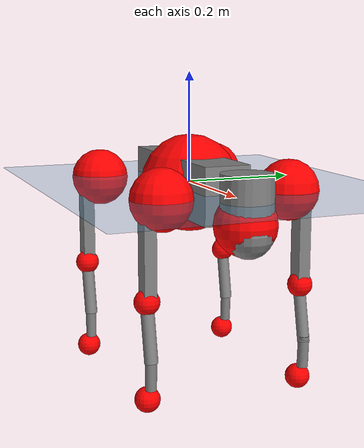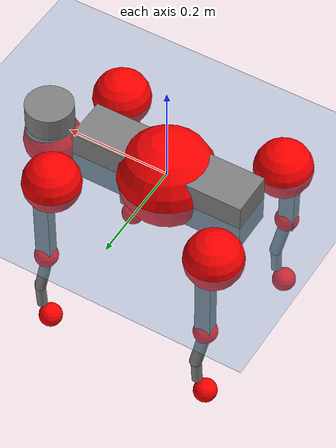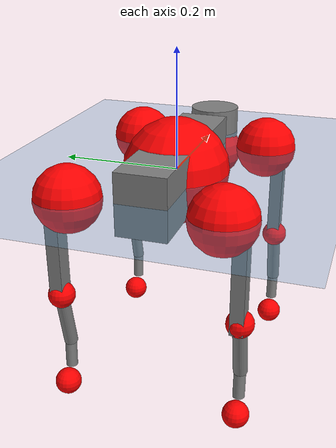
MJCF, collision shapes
<mujoco model="go2">
  <compiler angle="radian" assetdir="assets" balanceinertia="true" inertiafromgeom="false"/>

  <option timestep="0.005" density="1.2" viscosity="2e-05"/>

  <size nkey="1"/>

  <visual>
    <quality shadowsize="8192"/>
    <map shadowclip="0.5"/>
  </visual>

  <default>
    <default class="/">
      <geom contype="0" conaffinity="0" group="1" solref="-1000 -80"/>
      <site size="0.01 0.005 0.005" group="5"/>
      <general forcelimited="true" biastype="affine" gainprm="20" biasprm="0 -20 -0.5"/>
      <default class="go2">
        <joint armature="0.01" damping="0.01" frictionloss="0.2"/>
        <geom condim="1" margin="0.001"/>
        <default class="visual">
          <geom type="mesh" group="2"/>
        </default>
        <default class="collision">
          <geom group="3"/>
          <default class="foot">
            <geom size="0.022 0 0" condim="6" priority="1" friction="0.8 0.02 0.01" solimp="0.015 1 0.022"/>
          </default>
        </default>
        <default class="reward_collision_sphere">
          <geom group="5" rgba="1 0 0 1"/>
        </default>
      </default>
    </default>
  </default>

  <asset>
    <texture type="skybox" colorspace="auto" name="//unnamed_texture_0" builtin="gradient" rgb1="0.95 0.95 0.95" rgb2="0.95 0.95 0.95" width="100" height="600"/>
    <texture type="2d" colorspace="auto" name="texplane" builtin="checker" rgb1="0.345 0.575 0.748" rgb2="0.345 0.575 0.748" markrgb="1 1 1" width="512" height="512"/>
    <material name="MatPlane" class="/" texture="texplane" texuniform="true" texrepeat="2 2" specular="0.9"/>
    <material name="metal" class="/" rgba="0.9 0.95 0.95 1"/>
    <material name="black" class="/" rgba="0 0 0 1"/>
    <material name="white" class="/"/>
    <material name="gray" class="/" rgba="0.671705 0.692426 0.77427 1"/>
    <mesh name="base_0" class="/" file="base_0.obj"/>
    <mesh name="base_1" class="/" file="base_1.obj"/>
    <mesh name="base_2" class="/" file="base_2.obj"/>
    <mesh name="base_3" class="/" file="base_3.obj"/>
    <mesh name="base_4" class="/" file="base_4.obj"/>
    <mesh name="hip_0" class="/" file="hip_0.obj"/>
    <mesh name="hip_1" class="/" file="hip_1.obj"/>
    <mesh name="thigh_0" class="/" file="thigh_0.obj"/>
    <mesh name="thigh_1" class="/" file="thigh_1.obj"/>
    <mesh name="thigh_mirror_0" class="/" file="thigh_mirror_0.obj"/>
    <mesh name="thigh_mirror_1" class="/" file="thigh_mirror_1.obj"/>
    <mesh name="calf_0" class="/" file="calf_0.obj"/>
    <mesh name="calf_1" class="/" file="calf_1.obj"/>
    <mesh name="calf_mirror_0" class="/" file="calf_mirror_0.obj"/>
    <mesh name="calf_mirror_1" class="/" file="calf_mirror_1.obj"/>
    <mesh name="foot" class="/" file="foot.obj"/>
  </asset>

  <worldbody>
    <geom name="floor" class="/" size="100 100 0.125" type="plane" group="0" material="MatPlane"/>
    <light name="toplight_shadow" class="/" pos="0 0 5" dir="0.0990148 0.0990148 -0.990148" type="directional" ambient="0.04 0.04 0.04" diffuse="0.55 0.55 0.55" specular="0.12 0.12 0.12"/>
    <light name="toplight_fill" class="/" pos="0 0 5" dir="0.0990148 0.0990148 -0.990148" type="directional" castshadow="false" ambient="0.04 0.04 0.04" diffuse="0.3 0.3 0.3" specular="0.08 0.08 0.08"/>
    <body name="trunk" childclass="go2" pos="-0.00115904 0.000673482 -0.00277885" quat="1 -2.7421e-05 -7.40505e-06 3.10601e-05">
      <inertial pos="0.0185029 0.00296484 -0.00472427" quat="0.00051944 0.710885 0.00278769 0.703302" mass="5.29538" diaginertia="0.0499056 0.120604 0.00900263"/>
      <joint name="//unnamed_joint_0" type="free" armature="0" damping="0" frictionloss="0"/>
      <geom name="//unnamed_geom_1" class="visual" material="black" mesh="base_0"/>
      <geom name="//unnamed_geom_2" class="visual" material="black" mesh="base_1"/>
      <geom name="//unnamed_geom_3" class="visual" material="black" mesh="base_2"/>
      <geom name="//unnamed_geom_4" class="visual" material="white" mesh="base_3"/>
      <geom name="//unnamed_geom_5" class="visual" material="gray" mesh="base_4"/>
      <geom name="trunk_1" class="collision" size="0.169019 0.0420075 0.0512177" type="box"/>
      <geom name="trunk_2" class="collision" size="0.0449278 0.0404351" pos="0.243135 0 0.00808071" type="cylinder"/>
      <geom name="trunk_3" class="collision" size="0.0422322" pos="0.24996 0 -0.0484842"/>
      <geom name="//unnamed_geom_9" class="reward_collision_sphere" size="0.0898557"/>
      <geom name="//unnamed_geom_10" class="reward_collision_sphere" size="0.0539134" pos="0.238869 0 -0.0363632"/>
      <site name="imu" pos="-0.019382 0.0131866 0.0353278" size="0.00898557"/>
      <camera name="track" pos="0 -2.06899 0" quat="0.707107 0.707107 0 0" mode="trackcom"/>
      <camera name="ego_camera" pos="0.266169 0 0.0363632" quat="-0.5 -0.5 0.5 0.5"/>
      <body name="FL_hip" pos="0.162127 0.0465726 0.00300396" quat="0.999999 0.000147226 -0.00128497 -0.00038108">
        <inertial pos="-0.00254408 0.0003884 -0.000948607" quat="0.497293 0.49956 0.505681 0.49742" mass="0.484603" diaginertia="0.000401422 0.000745102 0.000165777"/>
        <joint name="FL_hip_joint" pos="0 0 0" axis="0.999975 0.0016866 0.00689119" range="-1.06461 1.0493" armature="0.00897136" damping="0.0230162" frictionloss="0.18427"/>
        <geom name="//unnamed_geom_11" class="visual" material="metal" mesh="hip_0"/>
        <geom name="//unnamed_geom_12" class="visual" material="gray" mesh="hip_1"/>
        <geom name="//unnamed_geom_13" class="collision" size="0.0413336 0.0179711" pos="0 0.0827596 0" quat="0.707107 0.707107 0 0" type="cylinder"/>
        <geom name="//unnamed_geom_14" class="reward_collision_sphere" size="0.0539134" pos="0 0.0724147 0"/>
        <body name="FL_thigh" pos="0.00187561 0.0983134 0.00247265" quat="1 -0.000232264 -0.000316339 -2.21171e-05">
          <inertial pos="-0.00159358 -0.02523 -0.0264886" quat="0.829723 0.0845792 -0.0193399 0.551391" mass="0.82551" diaginertia="0.00271931 0.00671459 0.000290567"/>
          <joint name="FL_thigh_joint" pos="0 0 0" axis="-0.00887286 0.999958 0.00214517" stiffness="0.0107288" range="-1.51272 3.49583" armature="0.00776936" damping="0.00681036" frictionloss="0.155811"/>
          <geom name="//unnamed_geom_15" class="visual" material="metal" mesh="thigh_0"/>
          <geom name="//unnamed_geom_16" class="visual" material="gray" mesh="thigh_1"/>
          <geom name="//unnamed_geom_17" class="collision" size="0.0956963 0.0110073 0.0152755" pos="0 0 -0.0860595" quat="0.707107 0 0.707107 0" type="box"/>
          <body name="FL_calf" pos="0.000114959 -0.000151042 -0.174413" quat="0.999999 3.84067e-05 -7.97118e-05 0.00119723">
            <inertial pos="0.00428128 -0.000622912 -0.111794" quat="0.712207 -0.00720396 -0.0148474 0.701775" mass="0.174666" diaginertia="0.000640675 0.00175133 1.85169e-05"/>
            <joint name="FL_calf_joint" pos="0 0 0" axis="0.000112569 0.999721 -0.0236179" stiffness="0.0107115" range="-2.72301 -0.848243" armature="0.0100823" damping="0.00259293" frictionloss="0.204024"/>
            <geom name="//unnamed_geom_18" class="visual" material="gray" mesh="calf_0"/>
            <geom name="//unnamed_geom_19" class="visual" material="black" mesh="calf_1"/>
            <geom name="FL_calf0" class="collision" size="0.0107827 0.0539134" pos="0.00682483 0 -0.0484842" quat="0.994493 0 -0.104807 0" type="cylinder"/>
            <geom name="//unnamed_geom_21" class="collision" size="0.00988412 0.0292031" pos="0.0170621 0 -0.119594" quat="0.999688 0 0.0249974 0" type="cylinder"/>
            <geom name="//unnamed_geom_22" class="visual" pos="0 0 -0.172119" quat="1 0 0 0" material="black" mesh="foot"/>
            <geom name="FL_foot" class="foot" size="0.0160366" pos="-0.00170621 0 -0.172119"/>
            <geom name="//unnamed_geom_24" class="reward_collision_sphere" size="0.0224639"/>
            <geom name="//unnamed_geom_25" class="reward_collision_sphere" size="0.0224639" pos="-0.00170621 0 -0.172119"/>
            <site name="FL_foot" class="foot" pos="-0.00170621 0 -0.172119" size="0.00898557"/>
          </body>
        </body>
      </body>
      <body name="FR_hip" pos="0.16644 -0.0460959 0.000882242" quat="1 8.88476e-05 0.000544879 0.000221091">
        <inertial pos="-0.00176761 -0.00248177 -0.000432372" quat="0.497439 0.50239 0.502968 0.497174" mass="0.492619" diaginertia="0.000378634 0.000684059 0.000155523"/>
        <joint name="FR_hip_joint" pos="0 0 0" axis="0.999901 0.0139567 -0.00191002" range="-0.998383 1.05155" armature="0.00993742" damping="0.00940299" frictionloss="0.172142"/>
        <geom name="//unnamed_geom_26" class="visual" pos="0 1.97252e-09 8.46054e-08" quat="4.63268e-05 1 0 0" material="metal" mesh="hip_0"/>
        <geom name="//unnamed_geom_27" class="visual" pos="0 3.19769e-09 -2.09261e-07" quat="4.63268e-05 1 0 0" material="gray" mesh="hip_1"/>
        <geom name="//unnamed_geom_28" class="collision" size="0.0413336 0.0179711" pos="0 -0.0827596 0" quat="0.707107 0.707107 0 0" type="cylinder"/>
        <geom name="//unnamed_geom_29" class="reward_collision_sphere" size="0.0539134" pos="0 -0.0724147 0"/>
        <body name="FR_thigh" pos="0.000715085 -0.0977491 0.00368184" quat="1 0.000156072 -0.000470141 0.000105452">
          <inertial pos="-0.000390537 0.0215862 -0.0260097" quat="0.55446 -0.0212679 0.0949965 0.826497" mass="0.830719" diaginertia="0.00260695 0.00647107 0.000295966"/>
          <joint name="FR_thigh_joint" pos="0 0 0" axis="-0.00736592 -0.999972 0.0014897" range="-3.50009 1.59347" armature="0.00892255" damping="0.00176851" frictionloss="0.205074"/>
          <geom name="//unnamed_geom_30" class="visual" material="metal" mesh="thigh_mirror_0"/>
          <geom name="//unnamed_geom_31" class="visual" material="gray" mesh="thigh_mirror_1"/>
          <geom name="//unnamed_geom_32" class="collision" size="0.0956963 0.0110073 0.0152755" pos="0 0 -0.0860595" quat="0.707107 0 0.707107 0" type="box"/>
          <body name="FR_calf" pos="-0.0011182 -0.00139205 -0.174514" quat="1 2.02013e-06 -2.39131e-05 -2.48754e-05">
            <inertial pos="0.00517847 9.58032e-05 -0.115152" quat="0.703168 -0.00430526 0.00323538 0.711003" mass="0.176641" diaginertia="0.000669533 0.00172973 1.78353e-05"/>
            <joint name="FR_calf_joint" pos="0 0 0" axis="0.000244446 -1 -0.000273964" stiffness="0.00260861" range="0.82294 2.75895" armature="0.00783729" damping="0.015906" frictionloss="0.154833"/>
            <geom name="//unnamed_geom_33" class="visual" material="gray" mesh="calf_mirror_0"/>
            <geom name="//unnamed_geom_34" class="visual" material="black" mesh="calf_mirror_1"/>
            <geom name="FR_calf0" class="collision" size="0.0116812 0.0539134" pos="0.00853104 0 -0.0484842" quat="0.995004 0 -0.0998334 0" type="cylinder"/>
            <geom name="//unnamed_geom_36" class="collision" size="0.00988412 0.0292031" pos="0.0170621 0 -0.119594" quat="0.999688 0 0.0249974 0" type="cylinder"/>
            <geom name="//unnamed_geom_37" class="visual" pos="0 0 -0.172119" quat="1 0 0 0" material="black" mesh="foot"/>
            <geom name="FR_foot" class="foot" size="0.0195937" pos="-0.00170621 0 -0.172119"/>
            <geom name="//unnamed_geom_39" class="reward_collision_sphere" size="0.0224639"/>
            <geom name="//unnamed_geom_40" class="reward_collision_sphere" size="0.0224639" pos="-0.00170621 0 -0.172119"/>
            <site name="FR_foot" class="foot" pos="-0.00170621 0 -0.172119" size="0.00898557"/>
          </body>
        </body>
      </body>
      <body name="RL_hip" pos="-0.16349 0.0467649 -0.00165502" quat="1 -9.43644e-05 0.000581451 -2.21789e-05">
        <inertial pos="0.00708153 0.00166189 -0.0016976" quat="0.50403 0.504387 0.49523 0.496281" mass="0.499812" diaginertia="0.000405372 0.000728527 0.000168941"/>
        <joint name="RL_hip_joint" pos="0 0 0" axis="-0.999787 0.019436 0.00687817" stiffness="0.0083582" range="-1.05393 0.995711" armature="0.00854837" damping="0" frictionloss="0.183215"/>
        <geom name="//unnamed_geom_41" class="visual" pos="-3.92315e-10 0 -7.69028e-08" quat="4.63268e-05 0 1 0" material="metal" mesh="hip_0"/>
        <geom name="//unnamed_geom_42" class="visual" pos="-6.3599e-10 0 -6.82018e-08" quat="4.63268e-05 0 1 0" material="gray" mesh="hip_1"/>
        <geom name="//unnamed_geom_43" class="collision" size="0.0413336 0.0179711" pos="0 0.0827596 0" quat="0.707107 0.707107 0 0" type="cylinder"/>
        <geom name="//unnamed_geom_44" class="reward_collision_sphere" size="0.0539134" pos="0 0.0724147 0"/>
        <body name="RL_thigh" pos="3.73449e-05 0.0979838 -1.51092e-05" quat="1 -2.75169e-05 0.000140264 1.68352e-05">
          <inertial pos="-0.00352913 -0.023423 -0.0252962" quat="0.832768 0.0734278 -0.0147816 0.548532" mass="0.852952" diaginertia="0.00272817 0.00719252 0.000319579"/>
          <joint name="RL_thigh_joint" pos="0 0 0" axis="0.0100655 0.999931 -0.00601259" stiffness="0.00485867" range="-0.537153 4.52832" armature="0.00964321" damping="0" frictionloss="0.177357"/>
          <geom name="//unnamed_geom_45" class="visual" material="metal" mesh="thigh_0"/>
          <geom name="//unnamed_geom_46" class="visual" material="gray" mesh="thigh_1"/>
          <geom name="//unnamed_geom_47" class="collision" size="0.0956963 0.0110073 0.0152755" pos="0 0 -0.0860595" quat="0.707107 0 0.707107 0" type="box"/>
          <body name="RL_calf" pos="8.82982e-05 -0.00194128 -0.171889" quat="1 -0.000383704 0.000412638 0.000710846">
            <inertial pos="0.00266854 -0.00139954 -0.115056" quat="0.713008 0.0127461 -0.0110251 0.700954" mass="0.180477" diaginertia="0.000672061 0.00177072 1.91207e-05"/>
            <joint name="RL_calf_joint" pos="0 0 0" axis="-0.00480841 0.999809 -0.0189559" stiffness="0.00890882" range="-2.72856 -0.781301" armature="0.0100387" damping="0" frictionloss="0.174214"/>
            <geom name="//unnamed_geom_48" class="visual" material="gray" mesh="calf_0"/>
            <geom name="//unnamed_geom_49" class="visual" material="black" mesh="calf_1"/>
            <geom name="RL_calf0" class="collision" size="0.0116812 0.0539134" pos="0.00853104 0 -0.0484842" quat="0.995004 0 -0.0998334 0" type="cylinder"/>
            <geom name="//unnamed_geom_51" class="collision" size="0.00988412 0.0292031" pos="0.0170621 0 -0.119594" quat="0.999688 0 0.0249974 0" type="cylinder"/>
            <geom name="//unnamed_geom_52" class="visual" pos="0 0 -0.172119" quat="1 0 0 0" material="black" mesh="foot"/>
            <geom name="RL_foot" class="foot" size="0.0167266" pos="-0.00170621 0 -0.172119"/>
            <geom name="//unnamed_geom_54" class="reward_collision_sphere" size="0.0224639"/>
            <geom name="//unnamed_geom_55" class="reward_collision_sphere" size="0.0224639" pos="-0.00170621 0 -0.172119"/>
            <site name="RL_foot" class="foot" pos="-0.00170621 0 -0.172119" size="0.00898557"/>
          </body>
        </body>
      </body>
      <body name="RR_hip" pos="-0.16207 -0.0512569 -0.00439836" quat="1 -1.91501e-05 -9.81225e-05 -0.000385585">
        <inertial pos="0.00397596 -0.000185045 0.000279801" quat="0.502107 0.490108 0.504331 0.503323" mass="0.493658" diaginertia="0.000405837 0.000719168 0.000167194"/>
        <joint name="RR_hip_joint" pos="0 0 0" axis="-0.99999 -0.00444561 0.000343289" stiffness="0.00716083" range="-0.990647 1.06391" armature="0.00763813" damping="0" frictionloss="0.190345"/>
        <geom name="//unnamed_geom_56" class="visual" pos="3.98595e-10 1.97252e-09 -1.61508e-07" quat="2.14617e-09 4.63268e-05 4.63268e-05 -1" material="metal" mesh="hip_0"/>
        <geom name="//unnamed_geom_57" class="visual" pos="6.20457e-10 3.19769e-09 1.4106e-07" quat="2.14617e-09 4.63268e-05 4.63268e-05 -1" material="gray" mesh="hip_1"/>
        <geom name="//unnamed_geom_58" class="collision" size="0.0413336 0.0179711" pos="0 -0.0827596 0" quat="0.707107 0.707107 0 0" type="cylinder"/>
        <geom name="//unnamed_geom_59" class="reward_collision_sphere" size="0.0539134" pos="0 -0.0724147 0"/>
        <body name="RR_thigh" pos="-0.00108399 -0.100766 0.00151396" quat="1 4.14497e-05 -0.000379723 -0.000217583">
          <inertial pos="-0.00358957 0.0230794 -0.026528" quat="0.55065 -0.0222748 0.0853063 0.830067" mass="0.825838" diaginertia="0.00265172 0.00709751 0.000303549"/>
          <joint name="RR_thigh_joint" pos="0 0 0" axis="0.00690183 -0.999966 0.0045945" stiffness="0.0109988" range="-4.53017 0.538024" armature="0.00909323" damping="0.0206982" frictionloss="0.19108"/>
          <geom name="//unnamed_geom_60" class="visual" material="metal" mesh="thigh_mirror_0"/>
          <geom name="//unnamed_geom_61" class="visual" material="gray" mesh="thigh_mirror_1"/>
          <geom name="//unnamed_geom_62" class="collision" size="0.0956963 0.0110073 0.0152755" pos="0 0 -0.0860595" quat="0.707107 0 0.707107 0" type="box"/>
          <body name="RR_calf" pos="0.00333313 -0.00185243 -0.169807" quat="1 0.000375881 0.000395612 -0.00012335">
            <inertial pos="0.00342495 0.00105608 -0.113908" quat="0.703932 -0.0173496 0.00457686 0.710041" mass="0.17545" diaginertia="0.000691936 0.00170312 1.84518e-05"/>
            <joint name="RR_calf_joint" pos="0 0 0" axis="-0.00271651 -0.999993 0.002469" range="0.791072 2.72669" armature="0.00797385" damping="0.0111326" frictionloss="0.159775"/>
            <geom name="//unnamed_geom_63" class="visual" material="gray" mesh="calf_mirror_0"/>
            <geom name="//unnamed_geom_64" class="visual" material="black" mesh="calf_mirror_1"/>
            <geom name="RR_calf0" class="collision" size="0.0116812 0.0539134" pos="0.00853104 0 -0.0484842" quat="0.995004 0 -0.0998334 0" type="cylinder"/>
            <geom name="//unnamed_geom_66" class="collision" size="0.00988412 0.0292031" pos="0.0170621 0 -0.119594" quat="0.999688 0 0.0249974 0" type="cylinder"/>
            <geom name="//unnamed_geom_67" class="visual" pos="0 0 -0.172119" quat="1 0 0 0" material="black" mesh="foot"/>
            <geom name="RR_foot" class="foot" size="0.019216" pos="-0.00170621 0 -0.172119"/>
            <geom name="//unnamed_geom_69" class="reward_collision_sphere" size="0.0224639"/>
            <geom name="//unnamed_geom_70" class="reward_collision_sphere" size="0.0224639" pos="-0.00170621 0 -0.172119"/>
            <site name="RR_foot" class="foot" pos="-0.00170621 0 -0.172119" size="0.00898557"/>
          </body>
        </body>
      </body>
    </body>
  </worldbody>

  <contact>
    <pair class="/" geom1="floor" geom2="FL_foot" name="//unnamed_contact_0"/>
    <pair class="/" geom1="floor" geom2="FR_foot" name="//unnamed_contact_1"/>
    <pair class="/" geom1="floor" geom2="RL_foot" name="//unnamed_contact_2"/>
    <pair class="/" geom1="floor" geom2="RR_foot" name="//unnamed_contact_3"/>
  </contact>

  <actuator>
    <general name="FL_hip" class="/" joint="FL_hip_joint" forcerange="-21.0662 21.0662" gainprm="19.1669" biasprm="0 -19.1669 -0.430175"/>
    <general name="FL_thigh" class="/" joint="FL_thigh_joint" forcerange="-19.225 19.225" gainprm="19.1669" biasprm="0 -19.1669 -0.430175"/>
    <general name="FL_calf" class="/" joint="FL_calf_joint" forcerange="-39.9012 39.9012" gainprm="19.1669" biasprm="0 -19.1669 -0.430175"/>
    <general name="FR_hip" class="/" joint="FR_hip_joint" forcerange="-21.9694 21.9694" gainprm="19.1669" biasprm="0 -19.1669 -0.430175"/>
    <general name="FR_thigh" class="/" joint="FR_thigh_joint" forcerange="-23.3606 23.3606" gainprm="19.1669" biasprm="0 -19.1669 -0.430175"/>
    <general name="FR_calf" class="/" joint="FR_calf_joint" forcerange="-42.012 42.012" gainprm="19.1669" biasprm="0 -19.1669 -0.430175"/>
    <general name="RL_hip" class="/" joint="RL_hip_joint" forcerange="-20.8789 20.8789" gainprm="19.1669" biasprm="0 -19.1669 -0.430175"/>
    <general name="RL_thigh" class="/" joint="RL_thigh_joint" forcerange="-19.1737 19.1737" gainprm="19.1669" biasprm="0 -19.1669 -0.430175"/>
    <general name="RL_calf" class="/" joint="RL_calf_joint" forcerange="-41.2066 41.2066" gainprm="19.1669" biasprm="0 -19.1669 -0.430175"/>
    <general name="RR_hip" class="/" joint="RR_hip_joint" forcerange="-19.659 19.659" gainprm="19.1669" biasprm="0 -19.1669 -0.430175"/>
    <general name="RR_thigh" class="/" joint="RR_thigh_joint" forcerange="-21.2313 21.2313" gainprm="19.1669" biasprm="0 -19.1669 -0.430175"/>
    <general name="RR_calf" class="/" joint="RR_calf_joint" forcerange="-43.0247 43.0247" gainprm="19.1669" biasprm="0 -19.1669 -0.430175"/>
  </actuator>

  <sensor>
    <gyro site="imu" name="imu_angular_velocity"/>
    <velocimeter site="imu" name="imu_linear_velocity"/>
    <framelinvel objtype="site" objname="FL_foot" name="FL_foot_global_linear_velocity"/>
    <framelinvel objtype="site" objname="FR_foot" name="FR_foot_global_linear_velocity"/>
    <framelinvel objtype="site" objname="RL_foot" name="RL_foot_global_linear_velocity"/>
    <framelinvel objtype="site" objname="RR_foot" name="RR_foot_global_linear_velocity"/>
  </sensor>

  <keyframe>
    <key name="home" qpos="0 0 0.325 1 0 0 0 0.1 0.8 -1.5 -0.1 -0.8 1.5 -0.1 0.8 -1.5 0.1 -0.8 1.5"/>
  </keyframe>
</mujoco>
